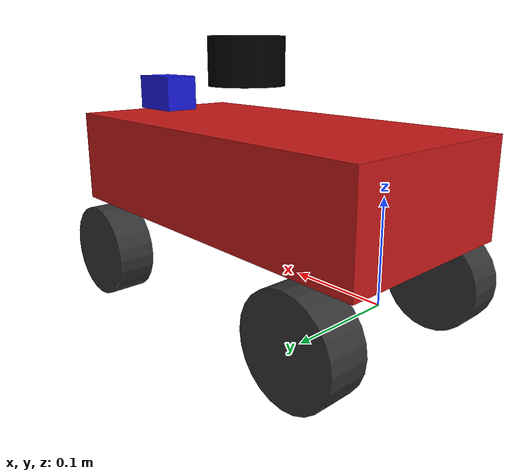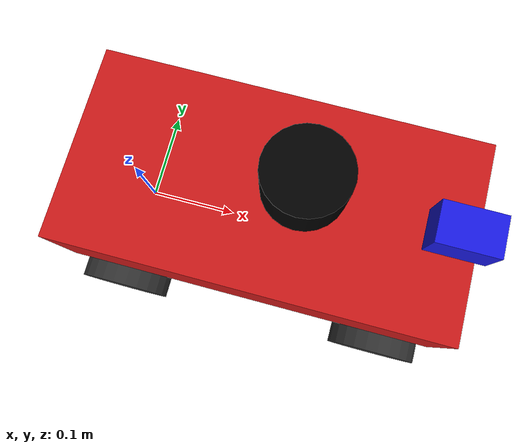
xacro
<?xml version="1.0"?>
<robot xmlns:xacro="http://www.ros.org/wiki/xacro" name="rc_car">

  <!-- Properties                                                          -->
  <xacro:property name="wheelbase"     value="0.30"/>
  <xacro:property name="track_width"   value="0.20"/>
  <xacro:property name="wheel_radius"  value="0.05"/>
  <xacro:property name="wheel_width"   value="0.04"/>
  <xacro:property name="body_length"   value="0.40"/>
  <xacro:property name="body_width"    value="0.20"/>
  <xacro:property name="body_height"   value="0.10"/>
  <xacro:property name="chassis_mass"  value="1.5"/>
  <xacro:property name="wheel_mass"    value="0.1"/>

  <!-- Macros                                                              -->

  <!-- Inertia tensor for a solid box -->
  <xacro:macro name="box_inertia" params="m x y z">
    <inertial>
      <mass value="${m}"/>
      <inertia
        ixx="${m*(y*y+z*z)/12}" ixy="0" ixz="0"
        iyy="${m*(x*x+z*z)/12}" iyz="0"
        izz="${m*(x*x+y*y)/12}"/>
    </inertial>
  </xacro:macro>

  <!-- Inertia tensor for a solid cylinder (axis = Z) -->
  <xacro:macro name="cylinder_inertia" params="m r h">
    <inertial>
      <mass value="${m}"/>
      <inertia
        ixx="${m*(3*r*r+h*h)/12}" ixy="0" ixz="0"
        iyy="${m*(3*r*r+h*h)/12}" iyz="0"
        izz="${m*r*r/2}"/>
    </inertial>
  </xacro:macro>

  <!-- Wheel macro (rear wheels only – no steering) -->
  <xacro:macro name="wheel" params="name parent x y">
    <link name="${name}">
      <visual>
        <geometry>
          <cylinder radius="${wheel_radius}" length="${wheel_width}"/>
        </geometry>
        <material name="dark_grey">
          <color rgba="0.2 0.2 0.2 1.0"/>
        </material>
      </visual>
      <collision>
        <geometry>
          <cylinder radius="${wheel_radius}" length="${wheel_width}"/>
        </geometry>
      </collision>
      <xacro:cylinder_inertia m="${wheel_mass}" r="${wheel_radius}" h="${wheel_width}"/>
    </link>
    <joint name="${name}_joint" type="continuous">
      <parent link="${parent}"/>
      <child  link="${name}"/>
      <!-- Wheels spin about their own Y axis; shift by 90° so the cylinder
           axis aligns with the vehicle lateral axis. -->
      <origin xyz="${x} ${y} 0" rpy="${pi/2} 0 0"/>
      <axis xyz="0 0 -1"/>
    </joint>
  </xacro:macro>

  <xacro:macro name="front_wheel" params="name parent x y">
    <!-- Steering link (massless pivot) -->
    <link name="${name}_steering_link">
      <xacro:box_inertia m="0.01" x="0.01" y="0.01" z="0.01"/>
    </link>
    <joint name="${name}_steering_joint" type="revolute">
      <parent link="${parent}"/>
      <child  link="${name}_steering_link"/>
      <origin xyz="${x} ${y} 0" rpy="0 0 0"/>
      <axis xyz="0 0 1"/>
      <limit lower="-0.6" upper="0.6" effort="10" velocity="1.0"/>
    </joint>

    <!-- Wheel itself (spins about its own axis) -->
    <link name="${name}">
      <visual>
        <geometry>
          <cylinder radius="${wheel_radius}" length="${wheel_width}"/>
        </geometry>
        <material name="dark_grey">
          <color rgba="0.2 0.2 0.2 1.0"/>
        </material>
      </visual>
      <collision>
        <geometry>
          <cylinder radius="${wheel_radius}" length="${wheel_width}"/>
        </geometry>
      </collision>
      <xacro:cylinder_inertia m="${wheel_mass}" r="${wheel_radius}" h="${wheel_width}"/>
    </link>
    <joint name="${name}_joint" type="continuous">
      <parent link="${name}_steering_link"/>
      <child  link="${name}"/>
      <origin xyz="0 0 0" rpy="${pi/2} 0 0"/>
      <axis xyz="0 0 -1"/>
    </joint>
  </xacro:macro>

  <!-- Base link (reference frame at centre of rear axle, ground level)   -->
  <link name="base_link"/>

  <!-- Chassis                                                             -->
  <link name="chassis">
    <visual>
      <origin xyz="${wheelbase/2} 0 ${body_height/2}" rpy="0 0 0"/>
      <geometry>
        <box size="${body_length} ${body_width} ${body_height}"/>
      </geometry>
      <material name="red">
        <color rgba="0.8 0.1 0.1 1.0"/>
      </material>
    </visual>
    <collision>
      <origin xyz="${wheelbase/2} 0 ${body_height/2}" rpy="0 0 0"/>
      <geometry>
        <box size="${body_length} ${body_width} ${body_height}"/>
      </geometry>
    </collision>
    <xacro:box_inertia m="${chassis_mass}"
                       x="${body_length}" y="${body_width}" z="${body_height}"/>
  </link>

  <joint name="base_to_chassis" type="fixed">
    <parent link="base_link"/>
    <child  link="chassis"/>
    <origin xyz="0 0 ${wheel_radius}" rpy="0 0 0"/>
  </joint>

  <!-- Wheels                                                              -->
  <!-- Rear wheels (no steering) -->
  <xacro:wheel name="rear_left_wheel"  parent="base_link"
               x="0"           y="${track_width/2}"/>
  <xacro:wheel name="rear_right_wheel" parent="base_link"
               x="0"           y="${-track_width/2}"/>

  <!-- Front wheels (with steering joints) -->
  <xacro:front_wheel name="front_left_wheel"  parent="base_link"
                     x="${wheelbase}" y="${track_width/2}"/>
  <xacro:front_wheel name="front_right_wheel" parent="base_link"
                     x="${wheelbase}" y="${-track_width/2}"/>

  <!-- LiDAR sensor                                                        -->
  <link name="lidar_link">
    <visual>
      <geometry>
        <cylinder radius="0.04" length="0.05"/>
      </geometry>
      <material name="black">
        <color rgba="0.0 0.0 0.0 1.0"/>
      </material>
    </visual>
    <collision>
      <geometry>
        <cylinder radius="0.04" length="0.05"/>
      </geometry>
    </collision>
    <xacro:cylinder_inertia m="0.1" r="0.04" h="0.05"/>
  </link>

  <joint name="lidar_joint" type="fixed">
    <parent link="chassis"/>
    <child  link="lidar_link"/>
    <!-- Mount the LiDAR on top of the chassis, towards the front. -->
    <origin xyz="${wheelbase*0.6} 0 ${body_height + 0.06}" rpy="0 0 0"/>
  </joint>

  <!-- IMU sensor                                                          -->
  <link name="imu_link">
    <xacro:box_inertia m="0.01" x="0.02" y="0.02" z="0.01"/>
  </link>

  <joint name="imu_joint" type="fixed">
    <parent link="chassis"/>
    <child  link="imu_link"/>
    <origin xyz="${wheelbase/2} 0 ${body_height/2}" rpy="0 0 0"/>
  </joint>

  <!-- RGB camera sensor                                                   -->
  <link name="camera_link">
    <visual>
      <geometry>
        <box size="0.06 0.04 0.04"/>
      </geometry>
      <material name="blue">
        <color rgba="0.1 0.1 0.9 1.0"/>
      </material>
    </visual>
    <collision>
      <geometry>
        <box size="0.06 0.04 0.04"/>
      </geometry>
    </collision>
    <xacro:box_inertia m="0.03" x="0.06" y="0.04" z="0.04"/>
  </link>

  <joint name="camera_joint" type="fixed">
    <parent link="chassis"/>
    <child  link="camera_link"/>
    <origin xyz="${wheelbase + 0.03} 0 ${body_height + 0.02}" rpy="0 0 0"/>
  </joint>

  <!-- Gazebo plugins                                                      -->

  <!-- Gazebo Sim Ackermann steering system -->
  <gazebo>
    <plugin filename="gz-sim-ackermann-steering-system"
            name="gz::sim::systems::AckermannSteering">
      <left_joint>rear_left_wheel_joint</left_joint>
      <right_joint>rear_right_wheel_joint</right_joint>
      <left_steering_joint>front_left_wheel_steering_joint</left_steering_joint>
      <right_steering_joint>front_right_wheel_steering_joint</right_steering_joint>
      <wheel_separation>${track_width}</wheel_separation>
      <wheel_base>${wheelbase}</wheel_base>
      <wheel_radius>${wheel_radius}</wheel_radius>
      <steering_limit>0.5</steering_limit>
      <max_velocity>2.0</max_velocity>
      <odom_publish_frequency>100</odom_publish_frequency>
      <sub_topic>/cmd_vel</sub_topic>
      <odom_topic>/odom</odom_topic>
      <tf_topic>/tf</tf_topic>
      <frame_id>odom</frame_id>
      <child_frame_id>base_link</child_frame_id>
    </plugin>
  </gazebo>

  <!-- 2-D LiDAR sensor (bridged with ros_gz_bridge) -->
  <gazebo reference="lidar_link">
    <sensor name="lidar" type="gpu_lidar">
      <always_on>true</always_on>
      <visualize>true</visualize>
      <update_rate>10</update_rate>
      <topic>/scan</topic>
      <ray>
        <scan>
          <horizontal>
            <samples>360</samples>
            <resolution>1</resolution>
            <min_angle>-3.14159</min_angle>
            <max_angle>3.14159</max_angle>
          </horizontal>
        </scan>
        <range>
          <min>0.12</min>
          <max>10.0</max>
          <resolution>0.015</resolution>
        </range>
        <noise>
          <type>gaussian</type>
          <mean>0.0</mean>
          <stddev>0.01</stddev>
        </noise>
      </ray>
    </sensor>
  </gazebo>

  <!-- IMU sensor (bridged with ros_gz_bridge) -->
  <gazebo reference="imu_link">
    <sensor name="imu_sensor" type="imu">
      <always_on>true</always_on>
      <update_rate>100</update_rate>
      <topic>/imu</topic>
      <imu>
        <angular_velocity>
          <x><noise type="gaussian"><mean>0</mean><stddev>0.009</stddev></noise></x>
          <y><noise type="gaussian"><mean>0</mean><stddev>0.009</stddev></noise></y>
          <z><noise type="gaussian"><mean>0</mean><stddev>0.009</stddev></noise></z>
        </angular_velocity>
        <linear_acceleration>
          <x><noise type="gaussian"><mean>0</mean><stddev>0.021</stddev></noise></x>
          <y><noise type="gaussian"><mean>0</mean><stddev>0.021</stddev></noise></y>
          <z><noise type="gaussian"><mean>0</mean><stddev>0.021</stddev></noise></z>
        </linear_acceleration>
      </imu>
    </sensor>
  </gazebo>

  <!-- RGB camera sensor (bridged with ros_gz_bridge) -->
  <gazebo reference="camera_link">
    <sensor name="rgb_camera" type="camera">
      <always_on>true</always_on>
      <visualize>true</visualize>
      <update_rate>30</update_rate>
      <topic>/camera/image_raw</topic>
      <camera>
        <horizontal_fov>1.3962634</horizontal_fov>
        <image>
          <width>640</width>
          <height>480</height>
          <format>R8G8B8</format>
        </image>
        <clip>
          <near>0.1</near>
          <far>50.0</far>
        </clip>
      </camera>
    </sensor>
  </gazebo>

</robot>
